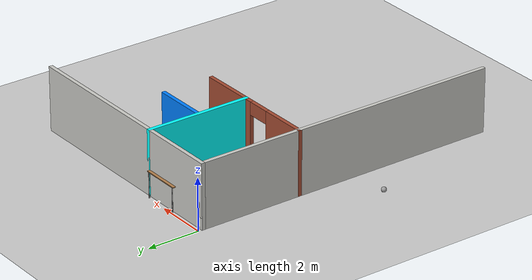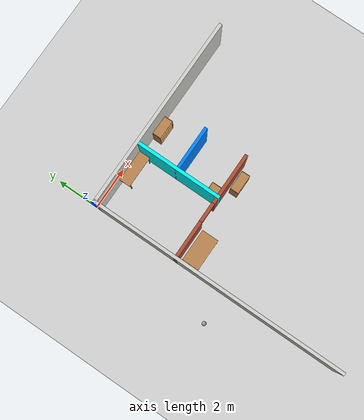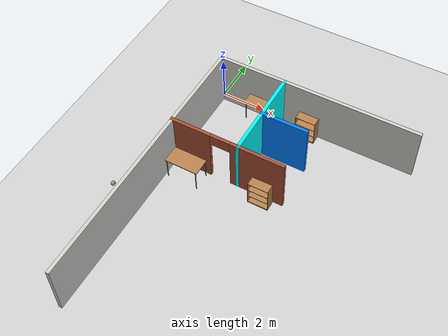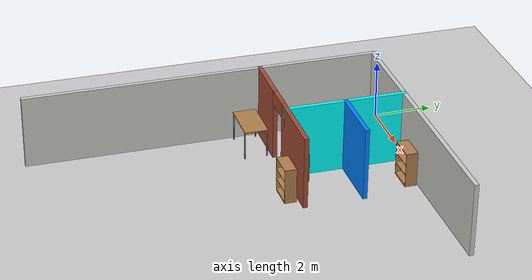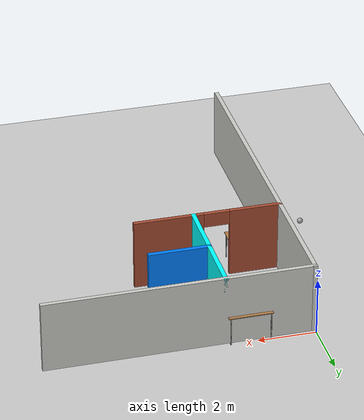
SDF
<sdf version="1.6">
 <world name="default">
  <model name="ground_plane">
   <static>1</static>
   <link name="link">
    <collision name="collision">
     <geometry><plane><normal>0 0 1</normal><size>100 100</size></plane></geometry>
     <surface>
      <contact><collide_bitmask>65535</collide_bitmask></contact>
      <friction><ode><mu>100</mu><mu2>50</mu2></ode></friction>
     </surface>
    </collision>
    <visual name="visual">
     <cast_shadows>0</cast_shadows>
     <geometry><plane><normal>0 0 1</normal><size>100 100</size></plane></geometry>
     <material>
      <script><uri>file://media/materials/scripts/gazebo.material</uri><name>Gazebo/Grey</name></script>
     </material>
    </visual>
   </link>
  </model>
  <model name="table">
   <static>1</static>
   <link name="link">
    <collision name="surface">
     <pose>0 0 1 0 -0 0</pose>
     <geometry><box><size>1.5 0.8 0.03</size></box></geometry>
     <surface><friction><ode><mu>0.6</mu><mu2>0.6</mu2></ode></friction></surface>
    </collision>
    <visual name="visual1">
     <pose>0 0 1 0 -0 0</pose>
     <geometry><box><size>1.5 0.8 0.03</size></box></geometry>
     <material>
      <script><uri>file://media/materials/scripts/gazebo.material</uri><name>Gazebo/Wood</name></script>
     </material>
    </visual>
    <collision name="front_left_leg">
     <pose>0.68 0.38 0.5 0 -0 0</pose>
     <geometry><cylinder><radius>0.02</radius><length>1</length></cylinder></geometry>
    </collision>
    <visual name="front_left_leg">
     <pose>0.68 0.38 0.5 0 -0 0</pose>
     <geometry><cylinder><radius>0.02</radius><length>1</length></cylinder></geometry>
     <material>
      <script><uri>file://media/materials/scripts/gazebo.material</uri><name>Gazebo/Grey</name></script>
     </material>
    </visual>
    <collision name="front_right_leg">
     <pose>0.68 -0.38 0.5 0 -0 0</pose>
     <geometry><cylinder><radius>0.02</radius><length>1</length></cylinder></geometry>
    </collision>
    <visual name="front_right_leg">
     <pose>0.68 -0.38 0.5 0 -0 0</pose>
     <geometry><cylinder><radius>0.02</radius><length>1</length></cylinder></geometry>
     <material>
      <script><uri>file://media/materials/scripts/gazebo.material</uri><name>Gazebo/Grey</name></script>
     </material>
    </visual>
    <collision name="back_right_leg">
     <pose>-0.68 -0.38 0.5 0 -0 0</pose>
     <geometry><cylinder><radius>0.02</radius><length>1</length></cylinder></geometry>
    </collision>
    <visual name="back_right_leg">
     <pose>-0.68 -0.38 0.5 0 -0 0</pose>
     <geometry><cylinder><radius>0.02</radius><length>1</length></cylinder></geometry>
     <material>
      <script><uri>file://media/materials/scripts/gazebo.material</uri><name>Gazebo/Grey</name></script>
     </material>
    </visual>
    <collision name="back_left_leg">
     <pose>-0.68 0.38 0.5 0 -0 0</pose>
     <geometry><cylinder><radius>0.02</radius><length>1</length></cylinder></geometry>
    </collision>
    <visual name="back_left_leg">
     <pose>-0.68 0.38 0.5 0 -0 0</pose>
     <geometry><cylinder><radius>0.02</radius><length>1</length></cylinder></geometry>
     <material>
      <script><uri>file://media/materials/scripts/gazebo.material</uri><name>Gazebo/Grey</name></script>
     </material>
    </visual>
   </link>
   <pose>2.22125 -0.403374 0 0 -0 0</pose>
  </model>
  <model name="my_ball">
   <link name="link">
    <inertial>
     <mass>1</mass>
     <inertia><ixx>0.1</ixx><ixy>0</ixy><ixz>0</ixz><iyy>0.1</iyy><iyz>0</iyz><izz>0.1</izz></inertia>
    </inertial>
    <visual name="visual">
     <geometry><sphere><radius>0.1</radius></sphere></geometry>
     <material>
      <script><name>Gazebo/Grey</name><uri>file://media/materials/scripts/gazebo.material</uri></script>
      <shader type="pixel"><normal_map>__default__</normal_map></shader>
      <ambient>1 1 1 1</ambient>
      <diffuse>1 1 1 1</diffuse>
      <specular>1 1 1 1</specular>
      <emissive>0 0 0 1</emissive>
     </material>
    </visual>
    <collision name="collision">
     <geometry><sphere><radius>0.1</radius></sphere></geometry>
     <surface>
      <friction>
       <ode><mu>1</mu><mu2>1</mu2><fdir1>0 0 0</fdir1><slip1>0</slip1><slip2>0</slip2></ode>
       <torsional>
        <coefficient>1</coefficient>
        <patch_radius>0</patch_radius>
        <surface_radius>0</surface_radius>
        <use_patch_radius>1</use_patch_radius>
        <ode><slip>0</slip></ode>
       </torsional>
      </friction>
      <bounce><restitution_coefficient>0</restitution_coefficient><threshold>1e+06</threshold></bounce>
      <contact>
       <collide_without_contact>0</collide_without_contact>
       <collide_without_contact_bitmask>1</collide_without_contact_bitmask>
       <collide_bitmask>1</collide_bitmask>
       <ode>
        <soft_cfm>0</soft_cfm>
        <soft_erp>0.2</soft_erp>
        <kp>1e+13</kp>
        <kd>1</kd>
        <max_vel>0.01</max_vel>
        <min_depth>0</min_depth>
       </ode>
       <bullet>
        <split_impulse>1</split_impulse>
        <split_impulse_penetration_threshold>-0.01</split_impulse_penetration_threshold>
        <soft_cfm>0</soft_cfm>
        <soft_erp>0.2</soft_erp>
        <kp>1e+13</kp>
        <kd>1</kd>
       </bullet>
      </contact>
     </surface>
    </collision>
   </link>
   <static>0</static>
   <pose>-1.47912 -6.67289 0.1 -2e-06 -0.020526 0</pose>
  </model>
  <model name="cabinet_1">
   <static>1</static>
   <link name="cabinet_bottom_plate">
    <inertial>
     <pose>0 0 -1 0 -0 0</pose>
     <inertia><ixx>2.05</ixx><ixy>0</ixy><ixz>0</ixz><iyy>2.05</iyy><iyz>0</iyz><izz>2.05</izz></inertia>
     <mass>25</mass>
    </inertial>
    <collision name="cabinet_bottom_plate_geom">
     <pose>0 0 0.01 0 -0 0</pose>
     <geometry><box><size>0.45 0.45 0.02</size></box></geometry>
    </collision>
    <visual name="cabinet_bottom_plate_geom_visual">
     <pose>0 0 0.01 0 -0 0</pose>
     <geometry><box><size>0.45 0.45 0.02</size></box></geometry>
     <material>
      <script><uri>file://media/materials/scripts/gazebo.material</uri><name>Gazebo/Wood</name></script>
     </material>
    </visual>
    <collision name="cabinet_bottom_plate_geom_cabinet_back_plate">
     <pose>0.235 0 0.51 0 -0 0</pose>
     <geometry><box><size>0.02 0.45 1.02</size></box></geometry>
    </collision>
    <visual name="cabinet_bottom_plate_geom_cabinet_back_plate_visual">
     <pose>0.235 0 0.51 0 -0 0</pose>
     <geometry><box><size>0.02 0.45 1.02</size></box></geometry>
     <material>
      <script><uri>file://media/materials/scripts/gazebo.material</uri><name>Gazebo/Wood</name></script>
     </material>
    </visual>
    <collision name="cabinet_bottom_plate_geom_cabinet_left_plate">
     <pose>0 0.235 0.51 0 -0 0</pose>
     <geometry><box><size>0.45 0.02 1.02</size></box></geometry>
    </collision>
    <visual name="cabinet_bottom_plate_geom_cabinet_left_plate_visual">
     <pose>0 0.235 0.51 0 -0 0</pose>
     <geometry><box><size>0.45 0.02 1.02</size></box></geometry>
     <material>
      <script><uri>file://media/materials/scripts/gazebo.material</uri><name>Gazebo/Wood</name></script>
     </material>
    </visual>
    <collision name="cabinet_bottom_plate_geom_cabinet_middle_plate">
     <pose>0 0 0.51 0 -0 0</pose>
     <geometry><box><size>0.45 0.45 0.02</size></box></geometry>
    </collision>
    <visual name="cabinet_bottom_plate_geom_cabinet_middle_plate_visual">
     <pose>0 0 0.51 0 -0 0</pose>
     <geometry><box><size>0.45 0.45 0.02</size></box></geometry>
     <material>
      <script><uri>file://media/materials/scripts/gazebo.material</uri><name>Gazebo/Wood</name></script>
     </material>
    </visual>
    <collision name="cabinet_bottom_plate_geom_cabinet_right_plate">
     <pose>0 -0.235 0.51 0 -0 0</pose>
     <geometry><box><size>0.45 0.02 1.02</size></box></geometry>
    </collision>
    <visual name="cabinet_bottom_plate_geom_cabinet_right_plate_visual">
     <pose>0 -0.235 0.51 0 -0 0</pose>
     <geometry><box><size>0.45 0.02 1.02</size></box></geometry>
     <material>
      <script><uri>file://media/materials/scripts/gazebo.material</uri><name>Gazebo/Wood</name></script>
     </material>
    </visual>
    <collision name="cabinet_bottom_plate_geom_cabinet_top_plate">
     <pose>0 0 1.01 0 -0 0</pose>
     <geometry><box><size>0.45 0.45 0.02</size></box></geometry>
    </collision>
    <visual name="cabinet_bottom_plate_geom_cabinet_top_plate_visual">
     <pose>0 0 1.01 0 -0 0</pose>
     <geometry><box><size>0.45 0.45 0.02</size></box></geometry>
     <material>
      <script><uri>file://media/materials/scripts/gazebo.material</uri><name>Gazebo/Wood</name></script>
     </material>
    </visual>
   </link>
   <pose>3.39674 -3.83309 0 0 -0 0</pose>
  </model>
  <model name="table_1">
   <static>1</static>
   <link name="link">
    <collision name="surface">
     <pose>0 0 1 0 -0 0</pose>
     <geometry><box><size>1.5 0.8 0.03</size></box></geometry>
     <surface><friction><ode><mu>0.6</mu><mu2>0.6</mu2></ode></friction></surface>
    </collision>
    <visual name="visual1">
     <pose>0 0 1 0 -0 0</pose>
     <geometry><box><size>1.5 0.8 0.03</size></box></geometry>
     <material>
      <script><uri>file://media/materials/scripts/gazebo.material</uri><name>Gazebo/Wood</name></script>
     </material>
    </visual>
    <collision name="front_left_leg">
     <pose>0.68 0.38 0.5 0 -0 0</pose>
     <geometry><cylinder><radius>0.02</radius><length>1</length></cylinder></geometry>
    </collision>
    <visual name="front_left_leg">
     <pose>0.68 0.38 0.5 0 -0 0</pose>
     <geometry><cylinder><radius>0.02</radius><length>1</length></cylinder></geometry>
     <material>
      <script><uri>file://media/materials/scripts/gazebo.material</uri><name>Gazebo/Grey</name></script>
     </material>
    </visual>
    <collision name="front_right_leg">
     <pose>0.68 -0.38 0.5 0 -0 0</pose>
     <geometry><cylinder><radius>0.02</radius><length>1</length></cylinder></geometry>
    </collision>
    <visual name="front_right_leg">
     <pose>0.68 -0.38 0.5 0 -0 0</pose>
     <geometry><cylinder><radius>0.02</radius><length>1</length></cylinder></geometry>
     <material>
      <script><uri>file://media/materials/scripts/gazebo.material</uri><name>Gazebo/Grey</name></script>
     </material>
    </visual>
    <collision name="back_right_leg">
     <pose>-0.68 -0.38 0.5 0 -0 0</pose>
     <geometry><cylinder><radius>0.02</radius><length>1</length></cylinder></geometry>
    </collision>
    <visual name="back_right_leg">
     <pose>-0.68 -0.38 0.5 0 -0 0</pose>
     <geometry><cylinder><radius>0.02</radius><length>1</length></cylinder></geometry>
     <material>
      <script><uri>file://media/materials/scripts/gazebo.material</uri><name>Gazebo/Grey</name></script>
     </material>
    </visual>
    <collision name="back_left_leg">
     <pose>-0.68 0.38 0.5 0 -0 0</pose>
     <geometry><cylinder><radius>0.02</radius><length>1</length></cylinder></geometry>
    </collision>
    <visual name="back_left_leg">
     <pose>-0.68 0.38 0.5 0 -0 0</pose>
     <geometry><cylinder><radius>0.02</radius><length>1</length></cylinder></geometry>
     <material>
      <script><uri>file://media/materials/scripts/gazebo.material</uri><name>Gazebo/Grey</name></script>
     </material>
    </visual>
   </link>
   <pose>0.950805 -4.79839 0 0 0 -0.003535</pose>
  </model>
  <model name="my_building">
   <link name="Wall_0">
    <pose>0 6 0 0 -0 0</pose>
    <visual name="Wall_0_Visual">
     <pose>0 0 1.25 0 -0 0</pose>
     <geometry><box><size>9.15 0.15 2.5</size></box></geometry>
     <material>
      <script><uri>file://media/materials/scripts/gazebo.material</uri><name>Gazebo/CeilingTiled</name></script>
      <ambient>0.760784 0.662745 0.627451 1</ambient>
      <shader type="pixel"/>
      <diffuse>1 1 1 1</diffuse>
      <specular>0 0 0 1</specular>
      <emissive>0 0 0 1</emissive>
     </material>
     <meta><layer>0</layer></meta>
    </visual>
    <collision name="Wall_0_Collision">
     <pose>0 0 1.25 0 -0 0</pose>
     <geometry><box><size>9.15 0.15 2.5</size></box></geometry>
     <surface>
      <friction>
       <ode><mu>1</mu><mu2>1</mu2><fdir1>0 0 0</fdir1><slip1>0</slip1><slip2>0</slip2></ode>
       <torsional>
        <coefficient>1</coefficient>
        <patch_radius>0</patch_radius>
        <surface_radius>0</surface_radius>
        <use_patch_radius>1</use_patch_radius>
        <ode><slip>0</slip></ode>
       </torsional>
      </friction>
      <bounce><restitution_coefficient>0</restitution_coefficient><threshold>1e+06</threshold></bounce>
      <contact>
       <collide_without_contact>0</collide_without_contact>
       <collide_without_contact_bitmask>1</collide_without_contact_bitmask>
       <collide_bitmask>1</collide_bitmask>
       <ode>
        <soft_cfm>0</soft_cfm>
        <soft_erp>0.2</soft_erp>
        <kp>1e+13</kp>
        <kd>1</kd>
        <max_vel>0.01</max_vel>
        <min_depth>0</min_depth>
       </ode>
       <bullet>
        <split_impulse>1</split_impulse>
        <split_impulse_penetration_threshold>-0.01</split_impulse_penetration_threshold>
        <soft_cfm>0</soft_cfm>
        <soft_erp>0.2</soft_erp>
        <kp>1e+13</kp>
        <kd>1</kd>
       </bullet>
      </contact>
     </surface>
    </collision>
   </link>
   <link name="Wall_11">
    <pose>-1.5 4 0 0 0 -1.5708</pose>
    <inertial>
     <mass>1</mass>
     <inertia><ixx>1</ixx><ixy>0</ixy><ixz>0</ixz><iyy>1</iyy><iyz>0</iyz><izz>1</izz></inertia>
    </inertial>
    <visual name="Wall_11_Visual">
     <pose>0 0 1.25 0 -0 0</pose>
     <geometry><box><size>4.15 0.15 2.5</size></box></geometry>
     <material>
      <script><uri>file://media/materials/scripts/gazebo.material</uri><name>Gazebo/Grey</name></script>
      <ambient>0 1 1 1</ambient>
      <shader type="pixel"><normal_map>__default__</normal_map></shader>
      <diffuse>0.7 0.7 0.7 1</diffuse>
      <specular>0.01 0.01 0.01 1</specular>
      <emissive>0 0 0 1</emissive>
     </material>
     <meta><layer>0</layer></meta>
    </visual>
    <collision name="Wall_11_Collision">
     <pose>0 0 1.25 0 -0 0</pose>
     <geometry><box><size>4.15 0.15 2.5</size></box></geometry>
     <surface>
      <friction>
       <ode><mu>1</mu><mu2>1</mu2><fdir1>0 0 0</fdir1><slip1>0</slip1><slip2>0</slip2></ode>
       <torsional>
        <coefficient>1</coefficient>
        <patch_radius>0</patch_radius>
        <surface_radius>0</surface_radius>
        <use_patch_radius>1</use_patch_radius>
        <ode><slip>0</slip></ode>
       </torsional>
      </friction>
      <bounce><restitution_coefficient>0</restitution_coefficient><threshold>1e+06</threshold></bounce>
      <contact>
       <collide_without_contact>0</collide_without_contact>
       <collide_without_contact_bitmask>1</collide_without_contact_bitmask>
       <collide_bitmask>1</collide_bitmask>
       <ode>
        <soft_cfm>0</soft_cfm>
        <soft_erp>0.2</soft_erp>
        <kp>1e+13</kp>
        <kd>1</kd>
        <max_vel>0.01</max_vel>
        <min_depth>0</min_depth>
       </ode>
       <bullet>
        <split_impulse>1</split_impulse>
        <split_impulse_penetration_threshold>-0.01</split_impulse_penetration_threshold>
        <soft_cfm>0</soft_cfm>
        <soft_erp>0.2</soft_erp>
        <kp>1e+13</kp>
        <kd>1</kd>
       </bullet>
      </contact>
     </surface>
    </collision>
   </link>
   <link name="Wall_13">
    <pose>-2 2 0 0 -0 0</pose>
    <inertial>
     <mass>1</mass>
     <inertia><ixx>1</ixx><ixy>0</ixy><ixz>0</ixz><iyy>1</iyy><iyz>0</iyz><izz>1</izz></inertia>
    </inertial>
    <visual name="Wall_13_Visual_2">
     <pose>-0.287034 0 2.25 0 -0 0</pose>
     <geometry><box><size>0.9 0.15 0.5</size></box></geometry>
     <material>
      <script><uri>file://media/materials/scripts/gazebo.material</uri><name>Gazebo/Bricks</name></script>
      <ambient>1 1 1 1</ambient>
      <shader type="pixel"><normal_map>__default__</normal_map></shader>
      <diffuse>0.7 0.7 0.7 1</diffuse>
      <specular>0.01 0.01 0.01 1</specular>
      <emissive>0 0 0 1</emissive>
     </material>
     <meta><layer>0</layer></meta>
    </visual>
    <visual name="Wall_13_Visual_0">
     <pose>-1.65602 0 1.25 0 -0 0</pose>
     <geometry><box><size>1.83797 0.15 2.5</size></box></geometry>
     <material>
      <script><uri>file://media/materials/scripts/gazebo.material</uri><name>Gazebo/Bricks</name></script>
      <ambient>1 1 1 1</ambient>
      <shader type="pixel"><normal_map>__default__</normal_map></shader>
      <diffuse>0.7 0.7 0.7 1</diffuse>
      <specular>0.01 0.01 0.01 1</specular>
      <emissive>0 0 0 1</emissive>
     </material>
     <meta><layer>0</layer></meta>
    </visual>
    <visual name="Wall_13_Visual_1">
     <pose>1.36898 0 1.25 0 -0 0</pose>
     <geometry><box><size>2.41203 0.15 2.5</size></box></geometry>
     <material>
      <script><uri>file://media/materials/scripts/gazebo.material</uri><name>Gazebo/Bricks</name></script>
      <ambient>1 1 1 1</ambient>
      <shader type="pixel"><normal_map>__default__</normal_map></shader>
      <diffuse>0.7 0.7 0.7 1</diffuse>
      <specular>0.01 0.01 0.01 1</specular>
      <emissive>0 0 0 1</emissive>
     </material>
     <meta><layer>0</layer></meta>
    </visual>
    <collision name="Wall_13_Collision_1">
     <pose>1.36898 0 1.25 0 -0 0</pose>
     <geometry><box><size>2.41203 0.15 2.5</size></box></geometry>
     <surface>
      <friction>
       <ode><mu>1</mu><mu2>1</mu2><fdir1>0 0 0</fdir1><slip1>0</slip1><slip2>0</slip2></ode>
       <torsional>
        <coefficient>1</coefficient>
        <patch_radius>0</patch_radius>
        <surface_radius>0</surface_radius>
        <use_patch_radius>1</use_patch_radius>
        <ode><slip>0</slip></ode>
       </torsional>
      </friction>
      <bounce><restitution_coefficient>0</restitution_coefficient><threshold>1e+06</threshold></bounce>
      <contact>
       <collide_without_contact>0</collide_without_contact>
       <collide_without_contact_bitmask>1</collide_without_contact_bitmask>
       <collide_bitmask>1</collide_bitmask>
       <ode>
        <soft_cfm>0</soft_cfm>
        <soft_erp>0.2</soft_erp>
        <kp>1e+13</kp>
        <kd>1</kd>
        <max_vel>0.01</max_vel>
        <min_depth>0</min_depth>
       </ode>
       <bullet>
        <split_impulse>1</split_impulse>
        <split_impulse_penetration_threshold>-0.01</split_impulse_penetration_threshold>
        <soft_cfm>0</soft_cfm>
        <soft_erp>0.2</soft_erp>
        <kp>1e+13</kp>
        <kd>1</kd>
       </bullet>
      </contact>
     </surface>
    </collision>
    <collision name="Wall_13_Collision_0">
     <pose>-1.65602 0 1.25 0 -0 0</pose>
     <geometry><box><size>1.83797 0.15 2.5</size></box></geometry>
     <surface>
      <friction>
       <ode><mu>1</mu><mu2>1</mu2><fdir1>0 0 0</fdir1><slip1>0</slip1><slip2>0</slip2></ode>
       <torsional>
        <coefficient>1</coefficient>
        <patch_radius>0</patch_radius>
        <surface_radius>0</surface_radius>
        <use_patch_radius>1</use_patch_radius>
        <ode><slip>0</slip></ode>
       </torsional>
      </friction>
      <bounce><restitution_coefficient>0</restitution_coefficient><threshold>1e+06</threshold></bounce>
      <contact>
       <collide_without_contact>0</collide_without_contact>
       <collide_without_contact_bitmask>1</collide_without_contact_bitmask>
       <collide_bitmask>1</collide_bitmask>
       <ode>
        <soft_cfm>0</soft_cfm>
        <soft_erp>0.2</soft_erp>
        <kp>1e+13</kp>
        <kd>1</kd>
        <max_vel>0.01</max_vel>
        <min_depth>0</min_depth>
       </ode>
       <bullet>
        <split_impulse>1</split_impulse>
        <split_impulse_penetration_threshold>-0.01</split_impulse_penetration_threshold>
        <soft_cfm>0</soft_cfm>
        <soft_erp>0.2</soft_erp>
        <kp>1e+13</kp>
        <kd>1</kd>
       </bullet>
      </contact>
     </surface>
    </collision>
    <collision name="Wall_13_Collision_2">
     <pose>-0.287034 0 2.25 0 -0 0</pose>
     <geometry><box><size>0.9 0.15 0.5</size></box></geometry>
     <surface>
      <friction>
       <ode><mu>1</mu><mu2>1</mu2><fdir1>0 0 0</fdir1><slip1>0</slip1><slip2>0</slip2></ode>
       <torsional>
        <coefficient>1</coefficient>
        <patch_radius>0</patch_radius>
        <surface_radius>0</surface_radius>
        <use_patch_radius>1</use_patch_radius>
        <ode><slip>0</slip></ode>
       </torsional>
      </friction>
      <bounce><restitution_coefficient>0</restitution_coefficient><threshold>1e+06</threshold></bounce>
      <contact>
       <collide_without_contact>0</collide_without_contact>
       <collide_without_contact_bitmask>1</collide_without_contact_bitmask>
       <collide_bitmask>1</collide_bitmask>
       <ode>
        <soft_cfm>0</soft_cfm>
        <soft_erp>0.2</soft_erp>
        <kp>1e+13</kp>
        <kd>1</kd>
        <max_vel>0.01</max_vel>
        <min_depth>0</min_depth>
       </ode>
       <bullet>
        <split_impulse>1</split_impulse>
        <split_impulse_penetration_threshold>-0.01</split_impulse_penetration_threshold>
        <soft_cfm>0</soft_cfm>
        <soft_erp>0.2</soft_erp>
        <kp>1e+13</kp>
        <kd>1</kd>
       </bullet>
      </contact>
     </surface>
    </collision>
   </link>
   <link name="Wall_23">
    <pose>-0.5 4 0 0 -0 0</pose>
    <inertial>
     <mass>1</mass>
     <inertia><ixx>1</ixx><ixy>0</ixy><ixz>0</ixz><iyy>1</iyy><iyz>0</iyz><izz>1</izz></inertia>
    </inertial>
    <visual name="Wall_23_Visual">
     <pose>0 0 1.25 0 -0 0</pose>
     <geometry><box><size>2.15 0.15 2.5</size></box></geometry>
     <material>
      <script><uri>file://media/materials/scripts/gazebo.material</uri><name>Gazebo/Grey</name></script>
      <ambient>0 0.5 1 1</ambient>
      <shader type="pixel"><normal_map>__default__</normal_map></shader>
      <diffuse>0.7 0.7 0.7 1</diffuse>
      <specular>0.01 0.01 0.01 1</specular>
      <emissive>0 0 0 1</emissive>
     </material>
     <meta><layer>0</layer></meta>
    </visual>
    <collision name="Wall_23_Collision">
     <pose>0 0 1.25 0 -0 0</pose>
     <geometry><box><size>2.15 0.15 2.5</size></box></geometry>
     <surface>
      <friction>
       <ode><mu>1</mu><mu2>1</mu2><fdir1>0 0 0</fdir1><slip1>0</slip1><slip2>0</slip2></ode>
       <torsional>
        <coefficient>1</coefficient>
        <patch_radius>0</patch_radius>
        <surface_radius>0</surface_radius>
        <use_patch_radius>1</use_patch_radius>
        <ode><slip>0</slip></ode>
       </torsional>
      </friction>
      <bounce><restitution_coefficient>0</restitution_coefficient><threshold>1e+06</threshold></bounce>
      <contact>
       <collide_without_contact>0</collide_without_contact>
       <collide_without_contact_bitmask>1</collide_without_contact_bitmask>
       <collide_bitmask>1</collide_bitmask>
       <ode>
        <soft_cfm>0</soft_cfm>
        <soft_erp>0.2</soft_erp>
        <kp>1e+13</kp>
        <kd>1</kd>
        <max_vel>0.01</max_vel>
        <min_depth>0</min_depth>
       </ode>
       <bullet>
        <split_impulse>1</split_impulse>
        <split_impulse_penetration_threshold>-0.01</split_impulse_penetration_threshold>
        <soft_cfm>0</soft_cfm>
        <soft_erp>0.2</soft_erp>
        <kp>1e+13</kp>
        <kd>1</kd>
       </bullet>
      </contact>
     </surface>
    </collision>
   </link>
   <link name="Wall_5">
    <pose>-4.5 0 0 0 0 -1.5708</pose>
    <visual name="Wall_5_Visual">
     <pose>0 0 1.25 0 -0 0</pose>
     <geometry><box><size>12.15 0.15 2.5</size></box></geometry>
     <material>
      <script><uri>file://media/materials/scripts/gazebo.material</uri><name>Gazebo/CeilingTiled</name></script>
      <ambient>0.760784 0.662745 0.627451 1</ambient>
      <shader type="pixel"/>
      <diffuse>1 1 1 1</diffuse>
      <specular>0 0 0 1</specular>
      <emissive>0 0 0 1</emissive>
     </material>
     <meta><layer>0</layer></meta>
    </visual>
    <collision name="Wall_5_Collision">
     <pose>0 0 1.25 0 -0 0</pose>
     <geometry><box><size>12.15 0.15 2.5</size></box></geometry>
     <surface>
      <friction>
       <ode><mu>1</mu><mu2>1</mu2><fdir1>0 0 0</fdir1><slip1>0</slip1><slip2>0</slip2></ode>
       <torsional>
        <coefficient>1</coefficient>
        <patch_radius>0</patch_radius>
        <surface_radius>0</surface_radius>
        <use_patch_radius>1</use_patch_radius>
        <ode><slip>0</slip></ode>
       </torsional>
      </friction>
      <bounce><restitution_coefficient>0</restitution_coefficient><threshold>1e+06</threshold></bounce>
      <contact>
       <collide_without_contact>0</collide_without_contact>
       <collide_without_contact_bitmask>1</collide_without_contact_bitmask>
       <collide_bitmask>1</collide_bitmask>
       <ode>
        <soft_cfm>0</soft_cfm>
        <soft_erp>0.2</soft_erp>
        <kp>1e+13</kp>
        <kd>1</kd>
        <max_vel>0.01</max_vel>
        <min_depth>0</min_depth>
       </ode>
       <bullet>
        <split_impulse>1</split_impulse>
        <split_impulse_penetration_threshold>-0.01</split_impulse_penetration_threshold>
        <soft_cfm>0</soft_cfm>
        <soft_erp>0.2</soft_erp>
        <kp>1e+13</kp>
        <kd>1</kd>
       </bullet>
      </contact>
     </surface>
    </collision>
   </link>
   <static>1</static>
   <pose>4.55195 -6.20018 0 0 -0 0</pose>
  </model>
  <model name="bookshelf_4">
   <static>1</static>
   <link name="link">
    <inertial><mass>1</mass></inertial>
    <collision name="back">
     <pose>0 0.005 0.6 0 -0 0</pose>
     <geometry><box><size>0.9 0.01 1.2</size></box></geometry>
    </collision>
    <visual name="visual1">
     <pose>0 0.005 0.6 0 -0 0</pose>
     <geometry><box><size>0.9 0.01 1.2</size></box></geometry>
     <material>
      <script><uri>file://media/materials/scripts/gazebo.material</uri><name>Gazebo/Wood</name></script>
     </material>
    </visual>
    <collision name="left_side">
     <pose>0.45 -0.195 0.6 0 -0 0</pose>
     <geometry><box><size>0.02 0.4 1.2</size></box></geometry>
    </collision>
    <visual name="visual2">
     <pose>0.45 -0.195 0.6 0 -0 0</pose>
     <geometry><box><size>0.02 0.4 1.2</size></box></geometry>
     <material>
      <script><uri>file://media/materials/scripts/gazebo.material</uri><name>Gazebo/Wood</name></script>
     </material>
    </visual>
    <collision name="right_side">
     <pose>-0.45 -0.195 0.6 0 -0 0</pose>
     <geometry><box><size>0.02 0.4 1.2</size></box></geometry>
    </collision>
    <visual name="visual3">
     <pose>-0.45 -0.195 0.6 0 -0 0</pose>
     <geometry><box><size>0.02 0.4 1.2</size></box></geometry>
     <material>
      <script><uri>file://media/materials/scripts/gazebo.material</uri><name>Gazebo/Wood</name></script>
     </material>
    </visual>
    <collision name="bottom">
     <pose>0 -0.195 0.03 0 -0 0</pose>
     <geometry><box><size>0.88 0.4 0.06</size></box></geometry>
    </collision>
    <visual name="visual4">
     <pose>0 -0.195 0.03 0 -0 0</pose>
     <geometry><box><size>0.88 0.4 0.06</size></box></geometry>
     <material>
      <script><uri>file://media/materials/scripts/gazebo.material</uri><name>Gazebo/Wood</name></script>
     </material>
    </visual>
    <collision name="top">
     <pose>0 -0.195 1.19 0 -0 0</pose>
     <geometry><box><size>0.88 0.4 0.02</size></box></geometry>
    </collision>
    <visual name="visual5">
     <pose>0 -0.195 1.19 0 -0 0</pose>
     <geometry><box><size>0.88 0.4 0.02</size></box></geometry>
     <material>
      <script><uri>file://media/materials/scripts/gazebo.material</uri><name>Gazebo/Wood</name></script>
     </material>
    </visual>
    <collision name="low_shelf">
     <pose>0 -0.195 0.43 0 -0 0</pose>
     <geometry><box><size>0.88 0.4 0.02</size></box></geometry>
    </collision>
    <visual name="visual6">
     <pose>0 -0.195 0.43 0 -0 0</pose>
     <geometry><box><size>0.88 0.4 0.02</size></box></geometry>
     <material>
      <script><uri>file://media/materials/scripts/gazebo.material</uri><name>Gazebo/Wood</name></script>
     </material>
    </visual>
    <collision name="high_shelf">
     <pose>0 -0.195 0.8 0 -0 0</pose>
     <geometry><box><size>0.88 0.4 0.02</size></box></geometry>
    </collision>
    <visual name="visual7">
     <pose>0 -0.195 0.8 0 -0 0</pose>
     <geometry><box><size>0.88 0.4 0.02</size></box></geometry>
     <material>
      <script><uri>file://media/materials/scripts/gazebo.material</uri><name>Gazebo/Wood</name></script>
     </material>
    </visual>
   </link>
   <pose>4.34384 -0.323666 0 0 -0 0</pose>
  </model>
  <model name="bookshelf_3">
   <link name="link">
    <inertial>
     <mass>1</mass>
     <inertia><ixx>1</ixx><ixy>0</ixy><ixz>0</ixz><iyy>1</iyy><iyz>0</iyz><izz>1</izz></inertia>
    </inertial>
    <visual name="visual1">
     <pose>0 0.005 0.6 0 -0 0</pose>
     <geometry><box><size>0.9 0.01 1.2</size></box></geometry>
     <material>
      <script><uri>file://media/materials/scripts/gazebo.material</uri><name>Gazebo/Wood</name></script>
      <shader type="pixel"><normal_map>__default__</normal_map></shader>
      <ambient>0.5 0 0 1</ambient>
      <diffuse>1 1 1 1</diffuse>
      <specular>0.2 0.2 0.2 1</specular>
      <emissive>0 0 0 1</emissive>
     </material>
    </visual>
    <visual name="visual2">
     <pose>0.45 -0.195 0.6 0 -0 0</pose>
     <geometry><box><size>0.02 0.4 1.2</size></box></geometry>
     <material>
      <script><uri>file://media/materials/scripts/gazebo.material</uri><name>Gazebo/Wood</name></script>
      <shader type="pixel"><normal_map>__default__</normal_map></shader>
      <ambient>1 1 1 1</ambient>
      <diffuse>1 1 1 1</diffuse>
      <specular>0.2 0.2 0.2 1</specular>
      <emissive>0 0 0 1</emissive>
     </material>
    </visual>
    <visual name="visual3">
     <pose>-0.45 -0.195 0.6 0 -0 0</pose>
     <geometry><box><size>0.02 0.4 1.2</size></box></geometry>
     <material>
      <script><uri>file://media/materials/scripts/gazebo.material</uri><name>Gazebo/Wood</name></script>
      <shader type="pixel"><normal_map>__default__</normal_map></shader>
      <ambient>1 1 1 1</ambient>
      <diffuse>1 1 1 1</diffuse>
      <specular>0.2 0.2 0.2 1</specular>
      <emissive>0 0 0 1</emissive>
     </material>
    </visual>
    <visual name="visual4">
     <pose>0 -0.195 0.03 0 -0 0</pose>
     <geometry><box><size>0.88 0.4 0.06</size></box></geometry>
     <material>
      <script><uri>file://media/materials/scripts/gazebo.material</uri><name>Gazebo/Wood</name></script>
      <shader type="pixel"><normal_map>__default__</normal_map></shader>
      <ambient>1 1 1 1</ambient>
      <diffuse>1 1 1 1</diffuse>
      <specular>0.2 0.2 0.2 1</specular>
      <emissive>0 0 0 1</emissive>
     </material>
    </visual>
    <visual name="visual5">
     <pose>0 -0.195 1.19 0 -0 0</pose>
     <geometry><box><size>0.88 0.4 0.02</size></box></geometry>
     <material>
      <script><uri>file://media/materials/scripts/gazebo.material</uri><name>Gazebo/Wood</name></script>
      <shader type="pixel"><normal_map>__default__</normal_map></shader>
      <ambient>1 1 1 1</ambient>
      <diffuse>1 1 1 1</diffuse>
      <specular>0.2 0.2 0.2 1</specular>
      <emissive>0 0 0 1</emissive>
     </material>
    </visual>
    <visual name="visual6">
     <pose>0 -0.195 0.43 0 -0 0</pose>
     <geometry><box><size>0.88 0.4 0.02</size></box></geometry>
     <material>
      <script><uri>file://media/materials/scripts/gazebo.material</uri><name>Gazebo/Wood</name></script>
      <shader type="pixel"><normal_map>__default__</normal_map></shader>
      <ambient>1 1 1 1</ambient>
      <diffuse>1 1 1 1</diffuse>
      <specular>0.2 0.2 0.2 1</specular>
      <emissive>0 0 0 1</emissive>
     </material>
    </visual>
    <visual name="visual7">
     <pose>0 -0.195 0.8 0 -0 0</pose>
     <geometry><box><size>0.88 0.4 0.02</size></box></geometry>
     <material>
      <script><uri>file://media/materials/scripts/gazebo.material</uri><name>Gazebo/Wood</name></script>
      <shader type="pixel"><normal_map>__default__</normal_map></shader>
      <ambient>1 1 1 1</ambient>
      <diffuse>1 1 1 1</diffuse>
      <specular>0.2 0.2 0.2 1</specular>
      <emissive>0 0 0 1</emissive>
     </material>
    </visual>
    <collision name="back">
     <pose>0 0.005 0.6 0 -0 0</pose>
     <geometry><box><size>0.9 0.01 1.2</size></box></geometry>
     <surface>
      <friction>
       <ode><mu>1</mu><mu2>1</mu2><fdir1>0 0 0</fdir1><slip1>0</slip1><slip2>0</slip2></ode>
       <torsional>
        <coefficient>1</coefficient>
        <patch_radius>0</patch_radius>
        <surface_radius>0</surface_radius>
        <use_patch_radius>1</use_patch_radius>
        <ode><slip>0</slip></ode>
       </torsional>
      </friction>
      <bounce><restitution_coefficient>0</restitution_coefficient><threshold>1e+06</threshold></bounce>
      <contact>
       <collide_without_contact>0</collide_without_contact>
       <collide_without_contact_bitmask>1</collide_without_contact_bitmask>
       <collide_bitmask>1</collide_bitmask>
       <ode>
        <soft_cfm>0</soft_cfm>
        <soft_erp>0.2</soft_erp>
        <kp>1e+13</kp>
        <kd>1</kd>
        <max_vel>0.01</max_vel>
        <min_depth>0</min_depth>
       </ode>
       <bullet>
        <split_impulse>1</split_impulse>
        <split_impulse_penetration_threshold>-0.01</split_impulse_penetration_threshold>
        <soft_cfm>0</soft_cfm>
        <soft_erp>0.2</soft_erp>
        <kp>1e+13</kp>
        <kd>1</kd>
       </bullet>
      </contact>
     </surface>
    </collision>
    <collision name="left_side">
     <pose>0.45 -0.195 0.6 0 -0 0</pose>
     <geometry><box><size>0.02 0.4 1.2</size></box></geometry>
     <surface>
      <friction>
       <ode><mu>1</mu><mu2>1</mu2><fdir1>0 0 0</fdir1><slip1>0</slip1><slip2>0</slip2></ode>
       <torsional>
        <coefficient>1</coefficient>
        <patch_radius>0</patch_radius>
        <surface_radius>0</surface_radius>
        <use_patch_radius>1</use_patch_radius>
        <ode><slip>0</slip></ode>
       </torsional>
      </friction>
      <bounce><restitution_coefficient>0</restitution_coefficient><threshold>1e+06</threshold></bounce>
      <contact>
       <collide_without_contact>0</collide_without_contact>
       <collide_without_contact_bitmask>1</collide_without_contact_bitmask>
       <collide_bitmask>1</collide_bitmask>
       <ode>
        <soft_cfm>0</soft_cfm>
        <soft_erp>0.2</soft_erp>
        <kp>1e+13</kp>
        <kd>1</kd>
        <max_vel>0.01</max_vel>
        <min_depth>0</min_depth>
       </ode>
       <bullet>
        <split_impulse>1</split_impulse>
        <split_impulse_penetration_threshold>-0.01</split_impulse_penetration_threshold>
        <soft_cfm>0</soft_cfm>
        <soft_erp>0.2</soft_erp>
        <kp>1e+13</kp>
        <kd>1</kd>
       </bullet>
      </contact>
     </surface>
    </collision>
    <collision name="right_side">
     <pose>-0.45 -0.195 0.6 0 -0 0</pose>
     <geometry><box><size>0.02 0.4 1.2</size></box></geometry>
     <surface>
      <friction>
       <ode><mu>1</mu><mu2>1</mu2><fdir1>0 0 0</fdir1><slip1>0</slip1><slip2>0</slip2></ode>
       <torsional>
        <coefficient>1</coefficient>
        <patch_radius>0</patch_radius>
        <surface_radius>0</surface_radius>
        <use_patch_radius>1</use_patch_radius>
        <ode><slip>0</slip></ode>
       </torsional>
      </friction>
      <bounce><restitution_coefficient>0</restitution_coefficient><threshold>1e+06</threshold></bounce>
      <contact>
       <collide_without_contact>0</collide_without_contact>
       <collide_without_contact_bitmask>1</collide_without_contact_bitmask>
       <collide_bitmask>1</collide_bitmask>
       <ode>
        <soft_cfm>0</soft_cfm>
        <soft_erp>0.2</soft_erp>
        <kp>1e+13</kp>
        <kd>1</kd>
        <max_vel>0.01</max_vel>
        <min_depth>0</min_depth>
       </ode>
       <bullet>
        <split_impulse>1</split_impulse>
        <split_impulse_penetration_threshold>-0.01</split_impulse_penetration_threshold>
        <soft_cfm>0</soft_cfm>
        <soft_erp>0.2</soft_erp>
        <kp>1e+13</kp>
        <kd>1</kd>
       </bullet>
      </contact>
     </surface>
    </collision>
    <collision name="bottom">
     <pose>0 -0.195 0.03 0 -0 0</pose>
     <geometry><box><size>0.88 0.4 0.06</size></box></geometry>
     <surface>
      <friction>
       <ode><mu>1</mu><mu2>1</mu2><fdir1>0 0 0</fdir1><slip1>0</slip1><slip2>0</slip2></ode>
       <torsional>
        <coefficient>1</coefficient>
        <patch_radius>0</patch_radius>
        <surface_radius>0</surface_radius>
        <use_patch_radius>1</use_patch_radius>
        <ode><slip>0</slip></ode>
       </torsional>
      </friction>
      <bounce><restitution_coefficient>0</restitution_coefficient><threshold>1e+06</threshold></bounce>
      <contact>
       <collide_without_contact>0</collide_without_contact>
       <collide_without_contact_bitmask>1</collide_without_contact_bitmask>
       <collide_bitmask>1</collide_bitmask>
       <ode>
        <soft_cfm>0</soft_cfm>
        <soft_erp>0.2</soft_erp>
        <kp>1e+13</kp>
        <kd>1</kd>
        <max_vel>0.01</max_vel>
        <min_depth>0</min_depth>
       </ode>
       <bullet>
        <split_impulse>1</split_impulse>
        <split_impulse_penetration_threshold>-0.01</split_impulse_penetration_threshold>
        <soft_cfm>0</soft_cfm>
        <soft_erp>0.2</soft_erp>
        <kp>1e+13</kp>
        <kd>1</kd>
       </bullet>
      </contact>
     </surface>
    </collision>
    <collision name="low_shelf">
     <pose>0 -0.195 0.43 0 -0 0</pose>
     <geometry><box><size>0.88 0.4 0.02</size></box></geometry>
     <surface>
      <friction>
       <ode><mu>1</mu><mu2>1</mu2><fdir1>0 0 0</fdir1><slip1>0</slip1><slip2>0</slip2></ode>
       <torsional>
        <coefficient>1</coefficient>
        <patch_radius>0</patch_radius>
        <surface_radius>0</surface_radius>
        <use_patch_radius>1</use_patch_radius>
        <ode><slip>0</slip></ode>
       </torsional>
      </friction>
      <bounce><restitution_coefficient>0</restitution_coefficient><threshold>1e+06</threshold></bounce>
      <contact>
       <collide_without_contact>0</collide_without_contact>
       <collide_without_contact_bitmask>1</collide_without_contact_bitmask>
       <collide_bitmask>1</collide_bitmask>
       <ode>
        <soft_cfm>0</soft_cfm>
        <soft_erp>0.2</soft_erp>
        <kp>1e+13</kp>
        <kd>1</kd>
        <max_vel>0.01</max_vel>
        <min_depth>0</min_depth>
       </ode>
       <bullet>
        <split_impulse>1</split_impulse>
        <split_impulse_penetration_threshold>-0.01</split_impulse_penetration_threshold>
        <soft_cfm>0</soft_cfm>
        <soft_erp>0.2</soft_erp>
        <kp>1e+13</kp>
        <kd>1</kd>
       </bullet>
      </contact>
     </surface>
    </collision>
    <collision name="top">
     <pose>0 -0.195 1.19 0 -0 0</pose>
     <geometry><box><size>0.88 0.4 0.02</size></box></geometry>
     <surface>
      <friction>
       <ode><mu>1</mu><mu2>1</mu2><fdir1>0 0 0</fdir1><slip1>0</slip1><slip2>0</slip2></ode>
       <torsional>
        <coefficient>1</coefficient>
        <patch_radius>0</patch_radius>
        <surface_radius>0</surface_radius>
        <use_patch_radius>1</use_patch_radius>
        <ode><slip>0</slip></ode>
       </torsional>
      </friction>
      <bounce><restitution_coefficient>0</restitution_coefficient><threshold>1e+06</threshold></bounce>
      <contact>
       <collide_without_contact>0</collide_without_contact>
       <collide_without_contact_bitmask>1</collide_without_contact_bitmask>
       <collide_bitmask>1</collide_bitmask>
       <ode>
        <soft_cfm>0</soft_cfm>
        <soft_erp>0.2</soft_erp>
        <kp>1e+13</kp>
        <kd>1</kd>
        <max_vel>0.01</max_vel>
        <min_depth>0</min_depth>
       </ode>
       <bullet>
        <split_impulse>1</split_impulse>
        <split_impulse_penetration_threshold>-0.01</split_impulse_penetration_threshold>
        <soft_cfm>0</soft_cfm>
        <soft_erp>0.2</soft_erp>
        <kp>1e+13</kp>
        <kd>1</kd>
       </bullet>
      </contact>
     </surface>
    </collision>
    <collision name="high_shelf">
     <pose>0 -0.195 0.8 0 -0 0</pose>
     <geometry><box><size>0.88 0.4 0.02</size></box></geometry>
     <surface>
      <friction>
       <ode><mu>1</mu><mu2>1</mu2><fdir1>0 0 0</fdir1><slip1>0</slip1><slip2>0</slip2></ode>
       <torsional>
        <coefficient>1</coefficient>
        <patch_radius>0</patch_radius>
        <surface_radius>0</surface_radius>
        <use_patch_radius>1</use_patch_radius>
        <ode><slip>0</slip></ode>
       </torsional>
      </friction>
      <bounce><restitution_coefficient>0</restitution_coefficient><threshold>1e+06</threshold></bounce>
      <contact>
       <collide_without_contact>0</collide_without_contact>
       <collide_without_contact_bitmask>1</collide_without_contact_bitmask>
       <collide_bitmask>1</collide_bitmask>
       <ode>
        <soft_cfm>0</soft_cfm>
        <soft_erp>0.2</soft_erp>
        <kp>1e+13</kp>
        <kd>1</kd>
        <max_vel>0.01</max_vel>
        <min_depth>0</min_depth>
       </ode>
       <bullet>
        <split_impulse>1</split_impulse>
        <split_impulse_penetration_threshold>-0.01</split_impulse_penetration_threshold>
        <soft_cfm>0</soft_cfm>
        <soft_erp>0.2</soft_erp>
        <kp>1e+13</kp>
        <kd>1</kd>
       </bullet>
      </contact>
     </surface>
    </collision>
   </link>
   <static>1</static>
   <pose>4.25315 -4.37154 0 0 -0 0</pose>
  </model>
 </world>
</sdf>
